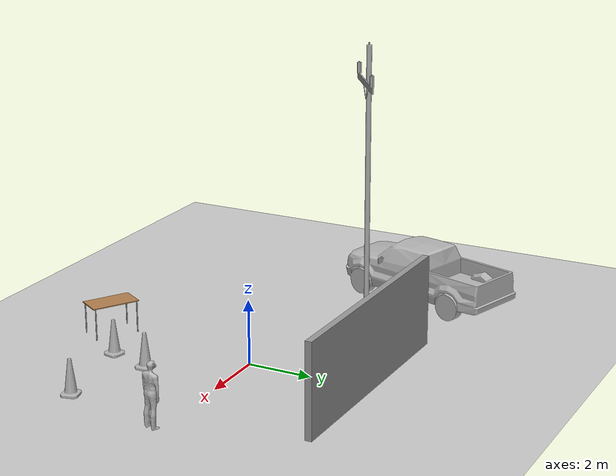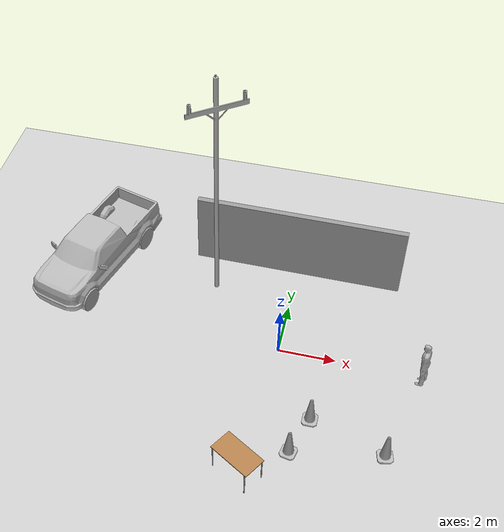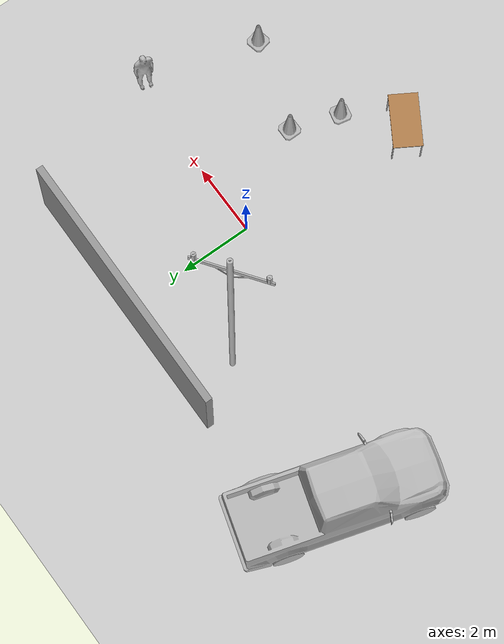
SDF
<sdf version="1.6">
 <world name="default">
  <light name="sun" type="directional">
   <pose>0 0 10 0 -0 0</pose>
   <diffuse>0.8 0.8 0.8 1</diffuse>
   <specular>0.2 0.2 0.2 1</specular>
   <attenuation>
    <range>1000</range>
    <constant>0.9</constant>
    <linear>0.01</linear>
    <quadratic>0.001</quadratic>
   </attenuation>
   <direction>-0.5 0.1 -0.9</direction>
  </light>
  <model name="ground_plane">
   <static>1</static>
   <link name="link">
    <collision name="collision">
     <geometry><plane><normal>0 0 1</normal><size>100 100</size></plane></geometry>
     <surface>
      <contact><collide_bitmask>65535</collide_bitmask></contact>
      <friction><ode><mu>100</mu><mu2>50</mu2></ode></friction>
     </surface>
    </collision>
    <visual name="visual">
     <cast_shadows>0</cast_shadows>
     <geometry><plane><normal>0 0 1</normal><size>100 100</size></plane></geometry>
     <material>
      <script><uri>file://media/materials/scripts/gazebo.material</uri><name>Gazebo/Grey</name></script>
     </material>
    </visual>
   </link>
  </model>
  <gravity>0 0 -9.8</gravity>
  <magnetic_field>6e-06 2.3e-05 -4.2e-05</magnetic_field>
  <atmosphere type="adiabatic"/>
  <physics name="default_physics" default="0" type="ode">
   <max_step_size>0.001</max_step_size>
   <real_time_factor>1</real_time_factor>
   <real_time_update_rate>1000</real_time_update_rate>
  </physics>
  <scene><ambient>0.4 0.4 0.4 1</ambient><background>0.7 0.7 0.7 1</background><shadows>1</shadows></scene>
  <audio><device>default</device></audio>
  <spherical_coordinates>
   <surface_model>EARTH_WGS84</surface_model>
   <latitude_deg>0</latitude_deg>
   <longitude_deg>0</longitude_deg>
   <elevation>0</elevation>
   <heading_deg>0</heading_deg>
  </spherical_coordinates>
  <model name="Construction Cone">
   <link name="link">
    <collision name="collision">
     <geometry>
      <mesh><scale>10 10 10</scale><uri>model://construction_cone/meshes/construction_cone.dae</uri></mesh>
     </geometry>
    </collision>
    <visual name="visual">
     <geometry>
      <mesh><scale>10 10 10</scale><uri>model://construction_cone/meshes/construction_cone.dae</uri></mesh>
     </geometry>
    </visual>
    <inertial>
     <inertia><ixx>1</ixx><ixy>0</ixy><ixz>0</ixz><iyy>1</iyy><iyz>0</iyz><izz>1</izz></inertia>
     <mass>1</mass>
    </inertial>
   </link>
   <pose>1.566 -2.56763 -4e-06 4e-06 -1e-06 0</pose>
  </model>
  <model name="Construction Cone_0">
   <link name="link">
    <collision name="collision">
     <geometry>
      <mesh><scale>10 10 10</scale><uri>model://construction_cone/meshes/construction_cone.dae</uri></mesh>
     </geometry>
    </collision>
    <visual name="visual">
     <geometry>
      <mesh><scale>10 10 10</scale><uri>model://construction_cone/meshes/construction_cone.dae</uri></mesh>
     </geometry>
    </visual>
    <inertial>
     <inertia><ixx>1</ixx><ixy>0</ixy><ixz>0</ixz><iyy>1</iyy><iyz>0</iyz><izz>1</izz></inertia>
     <mass>1</mass>
    </inertial>
   </link>
   <pose>1.12651 -3.93219 -0 0 -1e-06 -0.205608</pose>
  </model>
  <model name="Construction Cone_1">
   <link name="link">
    <collision name="collision">
     <geometry>
      <mesh><scale>10 10 10</scale><uri>model://construction_cone/meshes/construction_cone.dae</uri></mesh>
     </geometry>
    </collision>
    <visual name="visual">
     <geometry>
      <mesh><scale>10 10 10</scale><uri>model://construction_cone/meshes/construction_cone.dae</uri></mesh>
     </geometry>
    </visual>
    <inertial>
     <inertia><ixx>1</ixx><ixy>0</ixy><ixz>0</ixz><iyy>1</iyy><iyz>0</iyz><izz>1</izz></inertia>
     <mass>1</mass>
    </inertial>
   </link>
   <pose>4.10376 -3.37377 -0 0 -0 0.225852</pose>
  </model>
  <model name="person_standing">
   <link name="link">
    <inertial>
     <pose>0 -0.1 0.95 0 -0 0</pose>
     <mass>80</mass>
     <inertia><ixx>24.88</ixx><ixy>0</ixy><ixz>0</ixz><iyy>25.73</iyy><iyz>0</iyz><izz>2.48</izz></inertia>
    </inertial>
    <collision name="bottom">
     <pose>0 -0.1 0.01 0 -0 0</pose>
     <geometry><box><size>0.5 0.35 0.02</size></box></geometry>
    </collision>
    <collision name="person">
     <pose>0 0 0.02 0.04 -0 0</pose>
     <geometry><mesh><uri>model://person_standing/meshes/standing.dae</uri></mesh></geometry>
    </collision>
    <visual name="visual">
     <pose>0 0 0.02 0.04 -0 0</pose>
     <geometry><mesh><uri>model://person_standing/meshes/standing.dae</uri></mesh></geometry>
    </visual>
   </link>
   <pose>4.98093 -0.226706 0 -2e-06 -1e-06 -1.84603</pose>
  </model>
  <model name="table">
   <static>1</static>
   <link name="link">
    <collision name="surface">
     <pose>0 0 1 0 -0 0</pose>
     <geometry><box><size>1.5 0.8 0.03</size></box></geometry>
     <surface><friction><ode><mu>0.6</mu><mu2>0.6</mu2></ode></friction></surface>
    </collision>
    <visual name="visual1">
     <pose>0 0 1 0 -0 0</pose>
     <geometry><box><size>1.5 0.8 0.03</size></box></geometry>
     <material>
      <script><uri>file://media/materials/scripts/gazebo.material</uri><name>Gazebo/Wood</name></script>
     </material>
    </visual>
    <collision name="front_left_leg">
     <pose>0.68 0.38 0.5 0 -0 0</pose>
     <geometry><cylinder><radius>0.02</radius><length>1</length></cylinder></geometry>
    </collision>
    <visual name="front_left_leg">
     <pose>0.68 0.38 0.5 0 -0 0</pose>
     <geometry><cylinder><radius>0.02</radius><length>1</length></cylinder></geometry>
     <material>
      <script><uri>file://media/materials/scripts/gazebo.material</uri><name>Gazebo/Grey</name></script>
     </material>
    </visual>
    <collision name="front_right_leg">
     <pose>0.68 -0.38 0.5 0 -0 0</pose>
     <geometry><cylinder><radius>0.02</radius><length>1</length></cylinder></geometry>
    </collision>
    <visual name="front_right_leg">
     <pose>0.68 -0.38 0.5 0 -0 0</pose>
     <geometry><cylinder><radius>0.02</radius><length>1</length></cylinder></geometry>
     <material>
      <script><uri>file://media/materials/scripts/gazebo.material</uri><name>Gazebo/Grey</name></script>
     </material>
    </visual>
    <collision name="back_right_leg">
     <pose>-0.68 -0.38 0.5 0 -0 0</pose>
     <geometry><cylinder><radius>0.02</radius><length>1</length></cylinder></geometry>
    </collision>
    <visual name="back_right_leg">
     <pose>-0.68 -0.38 0.5 0 -0 0</pose>
     <geometry><cylinder><radius>0.02</radius><length>1</length></cylinder></geometry>
     <material>
      <script><uri>file://media/materials/scripts/gazebo.material</uri><name>Gazebo/Grey</name></script>
     </material>
    </visual>
    <collision name="back_left_leg">
     <pose>-0.68 0.38 0.5 0 -0 0</pose>
     <geometry><cylinder><radius>0.02</radius><length>1</length></cylinder></geometry>
    </collision>
    <visual name="back_left_leg">
     <pose>-0.68 0.38 0.5 0 -0 0</pose>
     <geometry><cylinder><radius>0.02</radius><length>1</length></cylinder></geometry>
     <material>
      <script><uri>file://media/materials/scripts/gazebo.material</uri><name>Gazebo/Grey</name></script>
     </material>
    </visual>
   </link>
   <pose>-0.295491 -4.9749 0 0 0 -0.546175</pose>
  </model>
  <model name="grey_wall">
   <static>1</static>
   <link name="link">
    <pose>0 0 1.4 0 -0 0</pose>
    <collision name="collision"><geometry><box><size>7.5 0.2 2.8</size></box></geometry></collision>
    <visual name="visual">
     <cast_shadows>0</cast_shadows>
     <geometry><box><size>7.5 0.2 2.8</size></box></geometry>
     <material>
      <script>
       <uri>model://grey_wall/materials/scripts</uri>
       <uri>model://grey_wall/materials/textures</uri>
       <name>vrc/grey_wall</name>
      </script>
     </material>
    </visual>
   </link>
   <pose>-0.052639 3.85361 0 0 0 -0.008487</pose>
  </model>
  <model name="pickup">
   <static>1</static>
   <link name="link">
    <collision name="collision">
     <pose>0 0 0 0 0 -1.5708</pose>
     <geometry><mesh><uri>model://pickup/meshes/pickup.dae</uri></mesh></geometry>
    </collision>
    <visual name="visual">
     <pose>0 0 0 0 0 -1.5708</pose>
     <geometry><mesh><uri>model://pickup/meshes/pickup.dae</uri></mesh></geometry>
    </visual>
   </link>
   <pose>-7.336 2.34575 0 0 0 -1.85779</pose>
  </model>
  <model name="telephone_pole">
   <static>1</static>
   <link name="link">
    <collision name="collision_pole">
     <pose>0 0 4.572 0 -0 0</pose>
     <geometry><cylinder><radius>0.0779475</radius><length>9.144</length></cylinder></geometry>
    </collision>
    <collision name="collision_cross">
     <pose>0 -0.098806 8.04836 0 -0 0</pose>
     <geometry><box><size>2.11606 0.041763 0.177806</size></box></geometry>
    </collision>
    <visual name="visual">
     <geometry><mesh><uri>model://telephone_pole/meshes/telephone_pole.dae</uri></mesh></geometry>
    </visual>
   </link>
   <pose>-2.76709 2.43858 0 0 -0 0.631699</pose>
  </model>
 </world>
</sdf>
